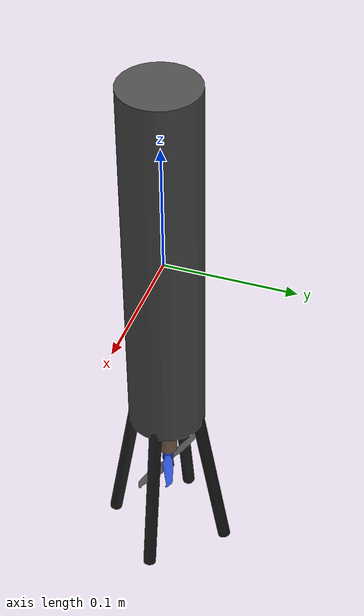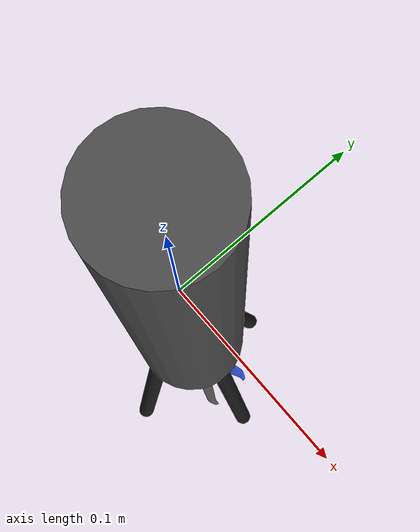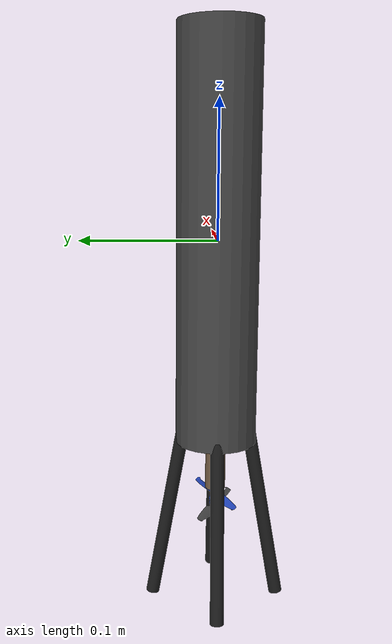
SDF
<?xml version='1.0'?>
<sdf version="1.6">
  <model name="viper_sitl">
    <include>
      <uri>model://viper</uri>
    </include>

    <!-- plugins -->

    <plugin name="rotor_0_blade_1" filename="libLiftDragPlugin.so">
      <a0>0.3</a0>
      <alpha_stall>1.4</alpha_stall>
      <cla>4.2500</cla>
      <cda>0.10</cda>
      <cma>0.00</cma>
      <cla_stall>-0.025</cla_stall>
      <cda_stall>0.0</cda_stall>
      <cma_stall>0.0</cma_stall>
      <area>0.002</area>
      <air_density>1.2041</air_density>
      <cp>0.084 0 0</cp>
      <forward>0 1 0</forward>
      <upward>0 0 1</upward>
      <link_name>viper::rotor_0</link_name>
    </plugin>

    <plugin name="rotor_0_blade_2" filename="libLiftDragPlugin.so">
      <a0>0.3</a0>
      <alpha_stall>1.4</alpha_stall>
      <cla>4.2500</cla>
      <cda>0.10</cda>
      <cma>0.00</cma>
      <cla_stall>-0.025</cla_stall>
      <cda_stall>0.0</cda_stall>
      <cma_stall>0.0</cma_stall>
      <area>0.002</area>
      <air_density>1.2041</air_density>
      <cp>-0.084 0 0</cp>
      <forward>0 -1 0</forward>
      <upward>0 0 1</upward>
      <link_name>viper::rotor_0</link_name>
    </plugin>

    <plugin name="rotor_1_blade_1" filename="libLiftDragPlugin.so">
      <a0>0.3</a0>
      <alpha_stall>1.4</alpha_stall>
      <cla>4.2500</cla>
      <cda>0.10</cda>
      <cma>0.00</cma>
      <cla_stall>-0.025</cla_stall>
      <cda_stall>0.0</cda_stall>
      <cma_stall>0.0</cma_stall>
      <area>0.002</area>
      <air_density>1.2041</air_density>
      <cp>0.084 0 0</cp>
      <forward>0 -1 0</forward>
      <upward>0 0 1</upward>
      <link_name>viper::rotor_1</link_name>
    </plugin>

    <plugin name="rotor_1_blade_2" filename="libLiftDragPlugin.so">
      <a0>0.3</a0>
      <alpha_stall>1.4</alpha_stall>
      <cla>4.2500</cla>
      <cda>0.10</cda>
      <cma>0.00</cma>
      <cla_stall>-0.025</cla_stall>
      <cda_stall>0.0</cda_stall>
      <cma_stall>0.0</cma_stall>
      <area>0.002</area>
      <air_density>1.2041</air_density>
      <cp>-0.084 0 0</cp>
      <forward>0 1 0</forward>
      <upward>0 0 1</upward>
      <link_name>viper::rotor_1</link_name>
    </plugin>

    <!-- The below plugin is only available for PX4 SITL -->
    <!-- For Gazebo11, libLiftDragPlugin.so is only way to model the motor and thrust componenets -->

    <!-- timeConstantUp is time taken for motor to accelerate and reach 63-70% of desired vel, fed to the first order filter -->
    <!-- timeConstantDown is time taken for motor to decelerate and reach 63-70% of desired vel, is fed to the first order filter -->
    <!-- maxRotVelocity ([rad/s]) -->
    <!-- motorConstant ([rad/s]), Thrust of each motor = rotor_speed^2 * motorConstant -->
    <!-- momentConstant ([m]) is used to calculate rotor torque magnitude -->
    <!-- rotorDragCoefficient accounts for the H-force due to the perpendicular air velocity, resulting in drag -->
    <!-- rollingMomentCoefficient accounts for torque from the motors themselves -->

    <plugin name="arducopter_plugin" filename="libArduPilotPlugin.so">
      <fdm_addr>127.0.0.1</fdm_addr>
      <fdm_port_in>9002</fdm_port_in>
      <fdm_port_out>9003</fdm_port_out>
      <!--
          Require by APM :
          Only change model and gazebo from XYZ to XY-Z coordinates
      -->
      <modelXYZToAirplaneXForwardZDown>0 0 0 3.141593 0 0</modelXYZToAirplaneXForwardZDown>
      <gazeboXYZToNED>0 0 0 3.141593 0 0</gazeboXYZToNED>
      <imuName>viper_sitl::viper::viper/imu_link::imu_sensor</imuName>
      <connectionTimeoutMaxCount>5</connectionTimeoutMaxCount>

      <!--
          incoming control command [0, 1]
          so offset it by 0 to get [0, 1]
          and divide max target by 1.
          offset = 0
          multiplier = 838 max rpm / 1 = 838
        -->

      <control channel="2">
        <type>VELOCITY</type>
        <offset>0</offset>
        <p_gain>0.20</p_gain>
        <i_gain>0</i_gain>
        <d_gain>0</d_gain>
        <i_max>0</i_max>
        <i_min>0</i_min>
        <cmd_max>2.5</cmd_max>
        <cmd_min>-2.5</cmd_min>
        <jointName>viper::rotor_0_joint</jointName>
        <multiplier>838</multiplier>
        <controlVelocitySlowdownSim>1</controlVelocitySlowdownSim>
      </control>

      <control channel="3">
        <type>VELOCITY</type>
        <offset>0</offset>
        <p_gain>0.20</p_gain>
        <i_gain>0</i_gain>
        <d_gain>0</d_gain>
        <i_max>0</i_max>
        <i_min>0</i_min>
        <cmd_max>2.5</cmd_max>
        <cmd_min>-2.5</cmd_min>
        <jointName>viper::rotor_1_joint</jointName>
        <multiplier>-838</multiplier>
        <controlVelocitySlowdownSim>1</controlVelocitySlowdownSim>
      </control>

      <control channel="0">
        <jointName>viper::tvc_roll_joint</jointName>
        <multiplier>1</multiplier>
        <offset>-0.5</offset>
        <servo_min>1100</servo_min>
        <servo_max>1900</servo_max>
        <type>POSITION</type>
        <p_gain>0.5</p_gain>
        <i_gain>0.1</i_gain>
        <d_gain>0.01</d_gain>
        <i_max>0</i_max>
        <i_min>0</i_min>
        <cmd_max>2.5</cmd_max>
        <cmd_min>-2.5</cmd_min>
      </control>

      <control channel="1">
        <jointName>viper::tvc_pitch_joint</jointName>
        <multiplier>1</multiplier>
        <offset>-0.5</offset>
        <servo_min>1100</servo_min>
        <servo_max>1900</servo_max>
        <type>POSITION</type>
        <p_gain>0.5</p_gain>
        <i_gain>0.1</i_gain>
        <d_gain>0.01</d_gain>
        <i_max>0</i_max>
        <i_min>0</i_min>
        <cmd_max>2.5</cmd_max>
        <cmd_min>-2.5</cmd_min>
      </control>

    </plugin>

  </model>

</sdf>

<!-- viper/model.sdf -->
<sdf version="1.6">
  <model name="viper">
    <static>false</static>

    <!-- Main Rocket Body -->
    <link name="base_link">

      <pose>0 0 0 0 0 0</pose>

      <velocity_decay>
        <linear>0.0</linear>
        <angular>0.0</angular>
      </velocity_decay>

      <inertial>
        <mass>1.0</mass>
        <inertia><ixx>0.008</ixx><iyy>0.008</iyy><izz>0.0005</izz></inertia>
      </inertial>

      <collision name="body_collision">
        <geometry><cylinder><radius>0.06</radius><length>0.55</length></cylinder></geometry>
        <pose>0 0 0 0 0 0</pose>
        <surface>
          <contact>
            <ode>
              <max_vel>0.1</max_vel>
              <min_depth>0.001</min_depth>
            </ode>
          </contact>
          <friction>
            <ode>
              <mu>100000.0</mu>
              <mu2>100000.0</mu2>
            </ode>
          </friction>
        </surface>
      </collision>

      <visual name="body_visual">
        <geometry><cylinder><radius>0.03</radius><length>0.3</length></cylinder></geometry>
        <material>
          <script>
            <name>Gazebo/DarkGrey</name>
          </script>
        </material>
      </visual>

      <visual name='front_left_leg_visual'>
        <pose>0.035 0 -0.20 0 -0.1745329 0</pose>
        <geometry>
          <cylinder>
            <radius>0.005</radius>
            <length>0.15</length>
          </cylinder>
        </geometry>
        <material>
          <script>
            <name>Gazebo/FlatBlack</name>
            <uri>file://media/materials/scripts/gazebo.material</uri>
          </script>
        </material>

      </visual>
      <visual name='front_right_leg_visual'>
        <pose>0 0.035 -0.20 0.1745329 0 0</pose>
        <geometry>
          <cylinder>
            <radius>0.005</radius>
            <length>0.15</length>
          </cylinder>
        </geometry>
        <material>
          <script>
            <name>Gazebo/FlatBlack</name>
            <uri>file://media/materials/scripts/gazebo.material</uri>
          </script>
        </material>
      </visual>

      <visual name='rear_left_leg_visual'>
        <pose>-0.035 0 -0.20 0 0.1745329 0</pose>
        <geometry>
          <cylinder>
            <radius>0.005</radius>
            <length>0.15</length>
          </cylinder>
        </geometry>
        <material>
          <script>
            <name>Gazebo/FlatBlack</name>
            <uri>file://media/materials/scripts/gazebo.material</uri>
          </script>
        </material>

      </visual>
      <visual name='rear_right_leg_visual'>
        <pose>0 -0.035 -0.20 -0.1745329 0 0</pose>
        <geometry>
          <cylinder>
            <radius>0.005</radius>
            <length>0.15</length>
          </cylinder>
        </geometry>
        <material>
          <script>
            <name>Gazebo/FlatBlack</name>
            <uri>file://media/materials/scripts/gazebo.material</uri>
          </script>
        </material>
      </visual>

    </link>

    <link name='viper/imu_link'>
      <inertial>
        <pose>0 0 0 0 0 0</pose>
        <mass>0.15</mass>
        <inertia>
          <ixx>0.00001</ixx>
          <ixy>0</ixy>
          <ixz>0</ixz>
          <iyy>0.00002</iyy>
          <iyz>0</iyz>
          <izz>0.00002</izz>
        </inertia>
      </inertial>
      <sensor name="imu_sensor" type="imu">
        <pose>0 0 0 3.141593 0 0</pose>
        <always_on>1</always_on>
        <update_rate>1000.0</update_rate>
      </sensor>
    </link>

    <joint name='viper/imu_joint' type='revolute'>
      <child>viper/imu_link</child>
      <parent>base_link</parent>
      <axis>
        <xyz>0 0 1</xyz>
        <limit>
          <lower>0</lower>
          <upper>0</upper>
          <effort>0</effort>
          <velocity>0</velocity>
        </limit>
        <dynamics>
          <damping>1.0</damping>
        </dynamics>
        <use_parent_model_frame>1</use_parent_model_frame>
      </axis>
      <physics>
        <ode>
          <implicit_spring_damper>1</implicit_spring_damper>
        </ode>
      </physics>
    </joint>

    <!-- TVC Pitch Joint -->
    <joint name="tvc_pitch_joint" type="revolute">
      <parent>base_link</parent>
      <child>tvc_pitch</child>
      <axis>
        <xyz>0 1 0</xyz>
        <limit>
          <lower>-0.3490659</lower>
          <upper>0.3490659</upper>
        </limit>
        <dynamics>
          <damping>0.05</damping>
        </dynamics>
      </axis>
    </joint>

    <link name="tvc_pitch">

      <pose>0 0 -0.15 0 0 0</pose>

      <inertial>
        <mass>0.1</mass>
        <inertia><ixx>1e-5</ixx><iyy>1e-5</iyy><izz>1e-5</izz></inertia>
      </inertial>

    </link>

    <!-- TVC Roll Joint -->
    <joint name="tvc_roll_joint" type="revolute">
      <parent>tvc_pitch</parent>
      <child>tvc_roll</child>
      <axis>
        <xyz>1 0 0</xyz>
        <limit>
          <lower>-0.3490659</lower>
          <upper>0.3490659</upper>
        </limit>
        <dynamics>
          <damping>0.05</damping>
        </dynamics>
      </axis>
    </joint>

    <link name="tvc_roll">
      <pose>0 0 -0.15 0 0 0</pose>

      <inertial>
        <mass>0.1</mass>
        <inertia><ixx>1e-5</ixx><iyy>1e-5</iyy><izz>1e-5</izz></inertia>
      </inertial>

      <visual name="body_visual">
        <geometry><cylinder><radius>0.0075</radius><length>0.075</length></cylinder></geometry>
        <material><ambient>0.5 0.4 0.3 1</ambient></material>
      </visual>

    </link>

    <link name='rotor_0'>

      <pose>0 0 -0.20 0 -0 0</pose>

      <inertial>
        <pose>0 0 0 0 -0 0</pose>
        <mass>0.025</mass>
        <inertia>
          <ixx>9.75e-06</ixx>
          <ixy>0</ixy>
          <ixz>0</ixz>
          <iyy>0.000166704</iyy>
          <iyz>0</iyz>
          <izz>0.000167604</izz>
        </inertia>
      </inertial>

      <visual name='rotor_0_visual'>
        <pose>0 0 0 0 -0 0</pose>
        <geometry>
          <mesh>
            <scale>0.25 0.25 0.25</scale>
            <uri>model://iris_with_standoffs/meshes/iris_prop_ccw.dae</uri>
          </mesh>
        </geometry>
        <material>
          <script>
            <name>Gazebo/Blue</name>
            <uri>__default__</uri>
          </script>
        </material>
      </visual>

      <gravity>1</gravity>

      <velocity_decay/>

      <self_collide>0</self_collide>

    </link>

    <joint name='rotor_0_joint' type='revolute'>
      <child>rotor_0</child>
      <parent>tvc_roll</parent>
      <axis>
        <xyz>0 0 1</xyz>
        <limit>
          <lower>-1e+16</lower>
          <upper>1e+16</upper>
        </limit>
        <dynamics>
          <damping>0.004</damping>
        </dynamics>
        <use_parent_model_frame>1</use_parent_model_frame>
      </axis>
      <physics>
        <ode>
          <implicit_spring_damper>1</implicit_spring_damper>
        </ode>
      </physics>
    </joint>

    <link name='rotor_1'>

      <pose>0 0 -0.21 0 -0 0</pose>

      <inertial>
        <pose>0 0 0 0 -0 0</pose>
        <mass>0.025</mass>
        <inertia>
          <ixx>9.75e-06</ixx>
          <ixy>0</ixy>
          <ixz>0</ixz>
          <iyy>0.000166704</iyy>
          <iyz>0</iyz>
          <izz>0.000167604</izz>
        </inertia>
      </inertial>

      <visual name='rotor_1_visual'>
        <pose>0 0 0 0 -0 0</pose>
        <geometry>
          <mesh>
            <scale>0.25 0.25 0.25</scale>
            <uri>model://iris_with_standoffs/meshes/iris_prop_cw.dae</uri>
          </mesh>
        </geometry>
        <material>
          <script>
            <name>Gazebo/DarkGrey</name>
            <uri>__default__</uri>
          </script>
        </material>
      </visual>

      <gravity>1</gravity>
      <velocity_decay/>
      <self_collide>0</self_collide>

    </link>

    <joint name='rotor_1_joint' type='revolute'>
      <child>rotor_1</child>
      <parent>tvc_roll</parent>
      <axis>
        <xyz>0 0 1</xyz>
        <limit>
          <lower>-1e+16</lower>
          <upper>1e+16</upper>
        </limit>
        <dynamics>
          <damping>0.004</damping>
        </dynamics>
        <use_parent_model_frame>1</use_parent_model_frame>
      </axis>
      <physics>
        <ode>
          <implicit_spring_damper>1</implicit_spring_damper>
        </ode>
      </physics>
    </joint>

  </model>

</sdf>
